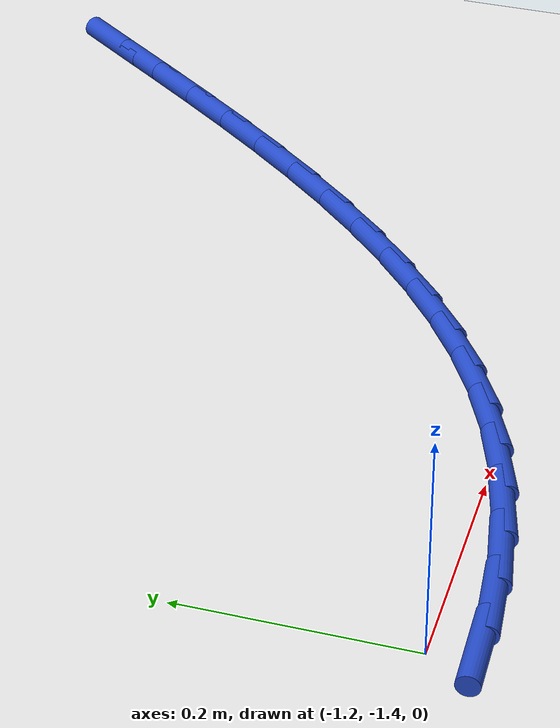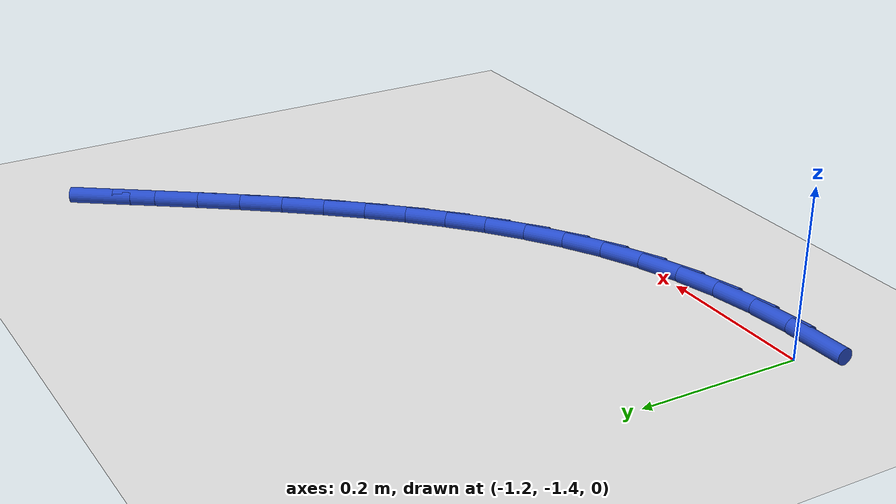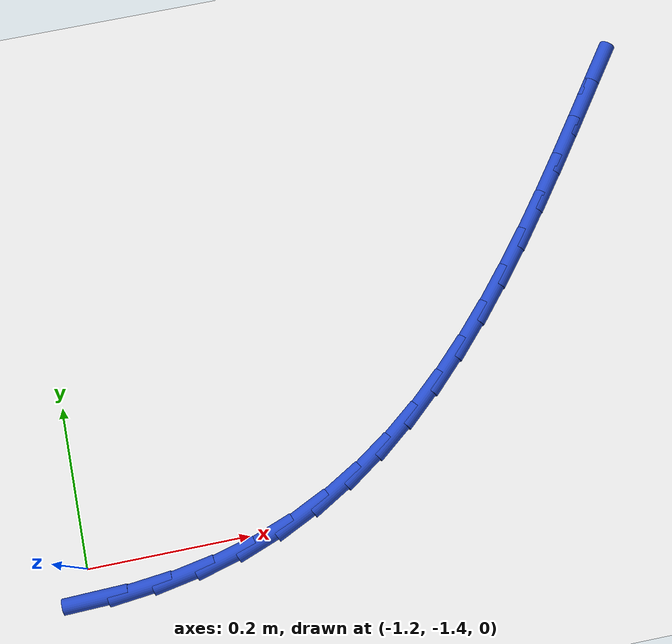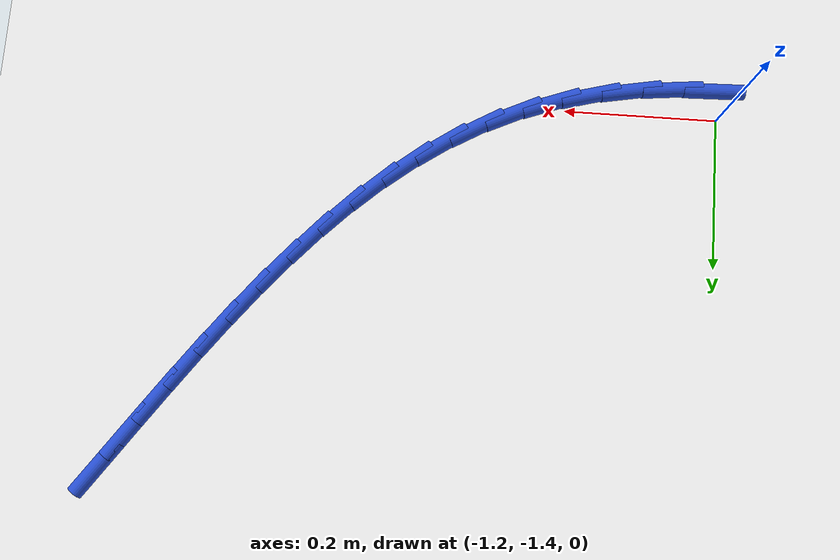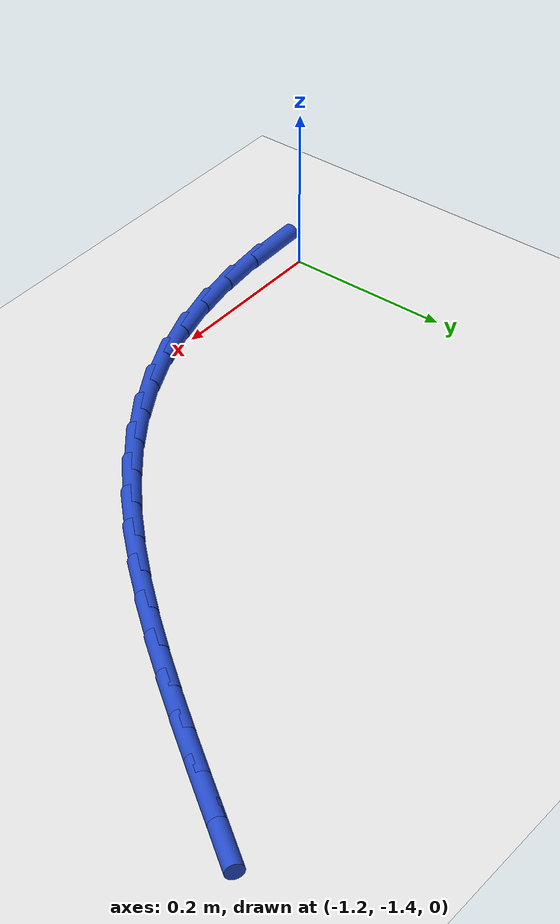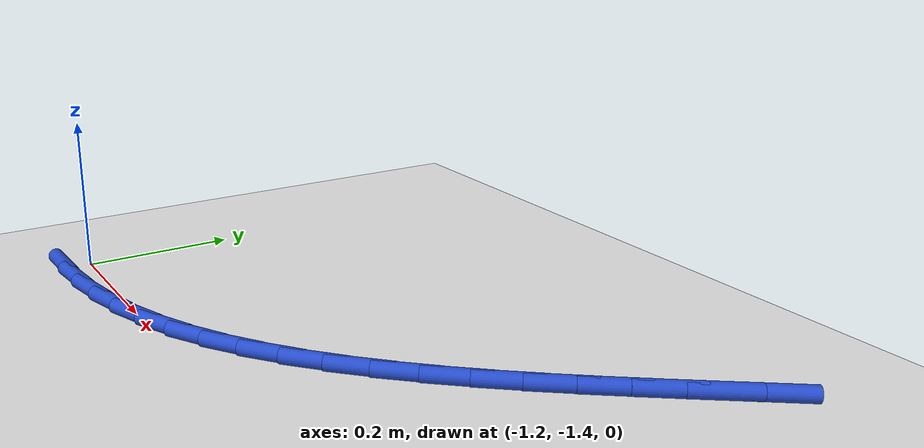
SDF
<sdf version="1.6">
 <world name="default">
  <model name="ground_plane">
   <static>1</static>
   <link name="link">
    <collision name="collision">
     <geometry><plane><normal>0 0 1</normal><size>100 100</size></plane></geometry>
     <surface><friction><ode><mu>100</mu><mu2>50</mu2></ode></friction></surface>
    </collision>
    <visual name="visual">
     <cast_shadows>0</cast_shadows>
     <geometry><plane><normal>0 0 1</normal><size>100 100</size></plane></geometry>
     <material>
      <script><uri>file://media/materials/scripts/gazebo.material</uri><name>Gazebo/WhiteGlow</name></script>
     </material>
    </visual>
   </link>
  </model>
  <model name="line">
   <link name="link_113">
    <pose>-1.1937456449530148 -1.4376937048499159 0.01 0 1.57 0.02917634742386078</pose>
    <collision name="collision">
     <geometry><cylinder><radius>0.01</radius><length>0.08</length></cylinder></geometry>
    </collision>
    <visual name="visual">
     <material>
      <script><name>Gazebo/Blue</name><uri>file://media/materials/scripts/gazebo.material</uri></script>
     </material>
     <geometry><cylinder><radius>0.01</radius><length>0.08</length></cylinder></geometry>
    </visual>
   </link>
   <link name="link_114">
    <pose>-1.1390077969148673 -1.4360962010559668 0.01 0 1.57 0.10577996951067951</pose>
    <collision name="collision">
     <geometry><cylinder><radius>0.01</radius><length>0.08</length></cylinder></geometry>
    </collision>
    <visual name="visual">
     <material>
      <script><name>Gazebo/Blue</name><uri>file://media/materials/scripts/gazebo.material</uri></script>
     </material>
     <geometry><cylinder><radius>0.01</radius><length>0.08</length></cylinder></geometry>
    </visual>
   </link>
   <link name="link_115">
    <pose>-1.084988868342899 -1.4303606720840505 0.01 0 1.57 0.18492913665947358</pose>
    <collision name="collision">
     <geometry><cylinder><radius>0.01</radius><length>0.08</length></cylinder></geometry>
    </collision>
    <visual name="visual">
     <material>
      <script><name>Gazebo/Blue</name><uri>file://media/materials/scripts/gazebo.material</uri></script>
     </material>
     <geometry><cylinder><radius>0.01</radius><length>0.08</length></cylinder></geometry>
    </visual>
   </link>
   <link name="link_116">
    <pose>-1.0321627236015563 -1.420478670249211 0.01 0 1.57 0.26778570623526193</pose>
    <collision name="collision">
     <geometry><cylinder><radius>0.01</radius><length>0.08</length></cylinder></geometry>
    </collision>
    <visual name="visual">
     <material>
      <script><name>Gazebo/Blue</name><uri>file://media/materials/scripts/gazebo.material</uri></script>
     </material>
     <geometry><cylinder><radius>0.01</radius><length>0.08</length></cylinder></geometry>
    </visual>
   </link>
   <link name="link_117">
    <pose>-0.9810032270552858 -1.4064417478664935 0.01 0 1.57 0.3554640474712007</pose>
    <collision name="collision">
     <geometry><cylinder><radius>0.01</radius><length>0.08</length></cylinder></geometry>
    </collision>
    <visual name="visual">
     <material>
      <script><name>Gazebo/Blue</name><uri>file://media/materials/scripts/gazebo.material</uri></script>
     </material>
     <geometry><cylinder><radius>0.01</radius><length>0.08</length></cylinder></geometry>
    </visual>
   </link>
   <link name="link_118">
    <pose>-0.9319809959351791 -1.3882430759503817 0.01 0 1.57 0.4450558423530518</pose>
    <collision name="collision">
     <geometry><cylinder><radius>0.01</radius><length>0.08</length></cylinder></geometry>
    </collision>
    <visual name="visual">
     <material>
      <script><name>Gazebo/Blue</name><uri>file://media/materials/scripts/gazebo.material</uri></script>
     </material>
     <geometry><cylinder><radius>0.01</radius><length>0.08</length></cylinder></geometry>
    </visual>
   </link>
   <link name="link_119">
    <pose>-0.8853319721023775 -1.3659928114376747 0.01 0 1.57 0.5294376756817134</pose>
    <collision name="collision">
     <geometry><cylinder><radius>0.01</radius><length>0.08</length></cylinder></geometry>
    </collision>
    <visual name="visual">
     <material>
      <script><name>Gazebo/Blue</name><uri>file://media/materials/scripts/gazebo.material</uri></script>
     </material>
     <geometry><cylinder><radius>0.01</radius><length>0.08</length></cylinder></geometry>
    </visual>
   </link>
   <link name="link_120">
    <pose>-0.8409033752734701 -1.3399948896689755 0.01 0 1.57 0.6066809539858464</pose>
    <collision name="collision">
     <geometry><cylinder><radius>0.01</radius><length>0.08</length></cylinder></geometry>
    </collision>
    <visual name="visual">
     <material>
      <script><name>Gazebo/Blue</name><uri>file://media/materials/scripts/gazebo.material</uri></script>
     </material>
     <geometry><cylinder><radius>0.01</radius><length>0.08</length></cylinder></geometry>
    </visual>
   </link>
   <link name="link_121">
    <pose>-0.7985058870804201 -1.310571460259061 0.01 0 1.57 0.6759760368721589</pose>
    <collision name="collision">
     <geometry><cylinder><radius>0.01</radius><length>0.08</length></cylinder></geometry>
    </collision>
    <visual name="visual">
     <material>
      <script><name>Gazebo/Blue</name><uri>file://media/materials/scripts/gazebo.material</uri></script>
     </material>
     <geometry><cylinder><radius>0.01</radius><length>0.08</length></cylinder></geometry>
    </visual>
   </link>
   <link name="link_122">
    <pose>-0.757950189155191 -1.2780446728227082 0.01 0 1.57 0.7369901010438451</pose>
    <collision name="collision">
     <geometry><cylinder><radius>0.01</radius><length>0.08</length></cylinder></geometry>
    </collision>
    <visual name="visual">
     <material>
      <script><name>Gazebo/Blue</name><uri>file://media/materials/scripts/gazebo.material</uri></script>
     </material>
     <geometry><cylinder><radius>0.01</radius><length>0.08</length></cylinder></geometry>
    </visual>
   </link>
   <link name="link_123">
    <pose>-0.7190469631297436 -1.2427366769746921 0.01 0 1.57 0.7897458908449858</pose>
    <collision name="collision">
     <geometry><cylinder><radius>0.01</radius><length>0.08</length></cylinder></geometry>
    </collision>
    <visual name="visual">
     <material>
      <script><name>Gazebo/Blue</name><uri>file://media/materials/scripts/gazebo.material</uri></script>
     </material>
     <geometry><cylinder><radius>0.01</radius><length>0.08</length></cylinder></geometry>
    </visual>
   </link>
   <link name="link_124">
    <pose>-0.6816068906360406 -1.20496962232979 0.01 0 1.57 0.8344939042936168</pose>
    <collision name="collision">
     <geometry><cylinder><radius>0.01</radius><length>0.08</length></cylinder></geometry>
    </collision>
    <visual name="visual">
     <material>
      <script><name>Gazebo/Blue</name><uri>file://media/materials/scripts/gazebo.material</uri></script>
     </material>
     <geometry><cylinder><radius>0.01</radius><length>0.08</length></cylinder></geometry>
    </visual>
   </link>
   <link name="link_125">
    <pose>-0.6454406533060462 -1.1650656585027792 0.01 0 1.57 0.8716027995333232</pose>
    <collision name="collision">
     <geometry><cylinder><radius>0.01</radius><length>0.08</length></cylinder></geometry>
    </collision>
    <visual name="visual">
     <material>
      <script><name>Gazebo/Blue</name><uri>file://media/materials/scripts/gazebo.material</uri></script>
     </material>
     <geometry><cylinder><radius>0.01</radius><length>0.08</length></cylinder></geometry>
    </visual>
   </link>
   <link name="link_126">
    <pose>-0.6103589327717208 -1.1233469351084346 0.01 0 1.57 0.9014768391558922</pose>
    <collision name="collision">
     <geometry><cylinder><radius>0.01</radius><length>0.08</length></cylinder></geometry>
    </collision>
    <visual name="visual">
     <material>
      <script><name>Gazebo/Blue</name><uri>file://media/materials/scripts/gazebo.material</uri></script>
     </material>
     <geometry><cylinder><radius>0.01</radius><length>0.08</length></cylinder></geometry>
    </visual>
   </link>
   <link name="link_127">
    <pose>-0.5761724106650282 -1.0801356017615342 0.01 0 1.57 0.9244992773494916</pose>
    <collision name="collision">
     <geometry><cylinder><radius>0.01</radius><length>0.08</length></cylinder></geometry>
    </collision>
    <visual name="visual">
     <material>
      <script><name>Gazebo/Blue</name><uri>file://media/materials/scripts/gazebo.material</uri></script>
     </material>
     <geometry><cylinder><radius>0.01</radius><length>0.08</length></cylinder></geometry>
    </visual>
   </link>
   <link name="link_128">
    <pose>-0.5426917686179301 -1.0357538080768531 0.01 0 1.57 0.9409963561437291</pose>
    <collision name="collision">
     <geometry><cylinder><radius>0.01</radius><length>0.08</length></cylinder></geometry>
    </collision>
    <visual name="visual">
     <material>
      <script><name>Gazebo/Blue</name><uri>file://media/materials/scripts/gazebo.material</uri></script>
     </material>
     <geometry><cylinder><radius>0.01</radius><length>0.08</length></cylinder></geometry>
    </visual>
   </link>
   <link name="link_129">
    <pose>-0.5097276882623891 -0.9905237036691681 0.01 0 1.57 0.9512158852729699</pose>
    <collision name="collision">
     <geometry><cylinder><radius>0.01</radius><length>0.08</length></cylinder></geometry>
    </collision>
    <visual name="visual">
     <material>
      <script><name>Gazebo/Blue</name><uri>file://media/materials/scripts/gazebo.material</uri></script>
     </material>
     <geometry><cylinder><radius>0.01</radius><length>0.08</length></cylinder></geometry>
    </visual>
   </link>
   <link name="link_130">
    <pose>-0.47709085123036843 -0.9447674381532565 0.01 0 1.57 0.9553153338571425</pose>
    <collision name="collision">
     <geometry><cylinder><radius>0.01</radius><length>0.08</length></cylinder></geometry>
    </collision>
    <visual name="visual">
     <material>
      <script><name>Gazebo/Blue</name><uri>file://media/materials/scripts/gazebo.material</uri></script>
     </material>
     <geometry><cylinder><radius>0.01</radius><length>0.08</length></cylinder></geometry>
    </visual>
   </link>
   <link name="link_131">
    <pose>-0.4445919391538296 -0.8988071611438938 0.01 0 1.57 0.9533558189486072</pose>
    <collision name="collision">
     <geometry><cylinder><radius>0.01</radius><length>0.08</length></cylinder></geometry>
    </collision>
    <visual name="visual">
     <material>
      <script><name>Gazebo/Blue</name><uri>file://media/materials/scripts/gazebo.material</uri></script>
     </material>
     <geometry><cylinder><radius>0.01</radius><length>0.08</length></cylinder></geometry>
    </visual>
   </link>
  </model>
 </world>
</sdf>
